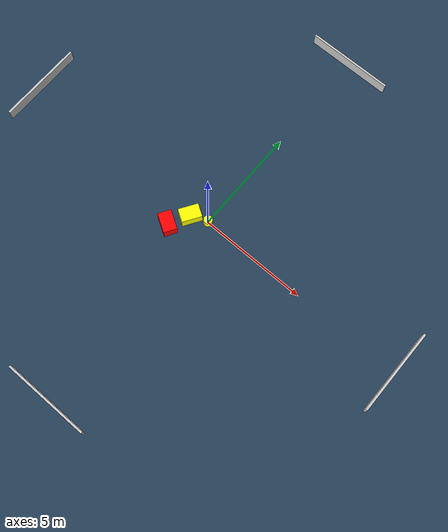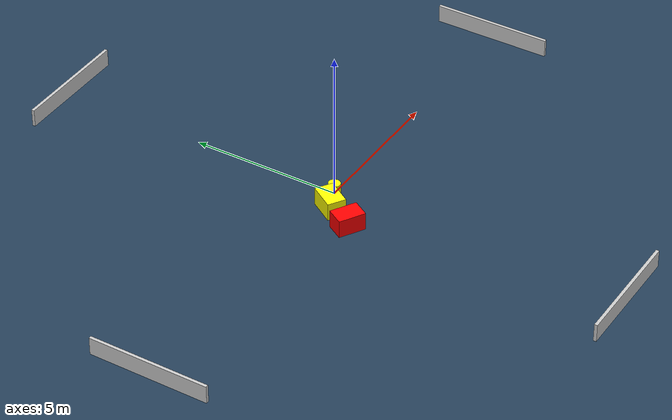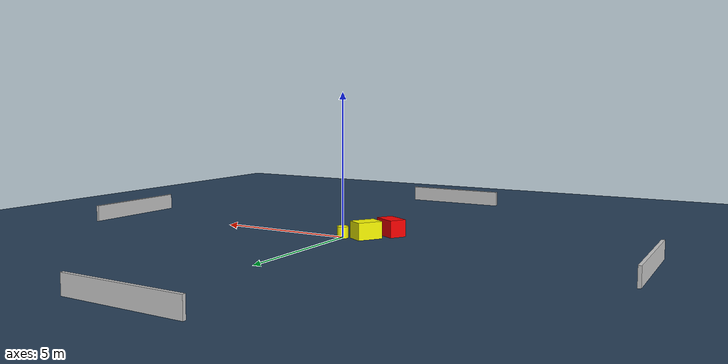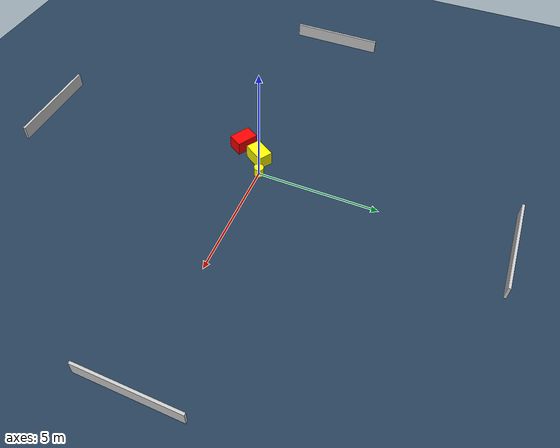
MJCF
<?xml version="1.0" ?>
<mujoco model="generated_environment">
  <option timestep="0.01" integrator="RK4" cone="elliptic"/>
  <default>
    <geom density="1"/>
  </default>
  <asset>
    <texture builtin="gradient" height="3072" name="skybox" rgb1="0.3 0.5 0.7" rgb2="0 0 0" type="skybox" width="512"/>
    <texture builtin="checker" height="300" name="groundplane" rgb1="0.2 0.3 0.4" rgb2="0.1 0.2 0.3" type="2d" width="300"/>
    <material name="groundplane" reflectance="0.2" texrepeat="5 5" texture="groundplane"/>
  </asset>
  <worldbody>
    <light dir="0 0 -1" directional="true" pos="0 0 1.5"/>
    <geom condim="3" friction="0.5 0.005 0.001" material="groundplane" name="floor" pos="0 0 0" size="0 0 0.05" type="plane"/>
    <body name="walls">
      <geom name="wall_1" condim="4" pos="-10.0 0.0 0.3" rgba="0.800000011920929 0.800000011920929 0.800000011920929 1.0" size="0.05 2.0 0.3" type="box"/>
      <geom name="wall_2" condim="4" pos="10.0 0.0 0.3" rgba="0.800000011920929 0.800000011920929 0.800000011920929 1.0" size="0.05 2.0 0.3" type="box"/>
      <geom name="wall_3" condim="4" pos="0.0 -10.0 0.3" rgba="0.800000011920929 0.800000011920929 0.800000011920929 1.0" size="2.0 0.05 0.3" type="box"/>
      <geom name="wall_4" condim="4" pos="0.0 10.0 0.3" rgba="0.800000011920929 0.800000011920929 0.800000011920929 1.0" size="2.0 0.05 0.3" type="box"/>
    </body>
    <body name="robot">
      <joint name="joint_x" type="slide" pos="0 0 0" axis="1 0 0"/>
      <joint name="joint_y" type="slide" pos="0 0 0" axis="0 1 0"/>
      <geom name="robot" type="cylinder" pos="0.0 0.0 0.2" size="0.2 0.2 0.0" mass="5.0" friction="1.0 0.005 0.0001" condim="4" rgba="1.0 1.0 0.0 1.0"/>
    </body>
    <body name="obstacle_1_movable">
      <geom name="obstacle_1_movable" condim="4" pos="-0.7491817585641208 -0.3126597820522223 0.3" euler="0 0 327.48509602153297" friction="0.0 0.005 0.001" rgba="1.0 1.0 0.0 1.0" size="0.30781264669131125 0.45846541445529687 0.3" type="box" mass="0.1"/>
      <joint type="free"/>
    </body>
    <body name="obstacle_2_static">
      <geom name="obstacle_2_static" condim="4" pos="-1.2420895468252589 -1.232807712583436 0.3" euler="0 0 149.28710318396924" friction="0.0 0.005 0.001" rgba="1.0 0.0 0.0 1.0" size="0.45389613504216386 0.3082053022153181 0.3" type="box"/>
    </body>
  </worldbody>
  <actuator>
    <motor name="actuator_x" joint="joint_x" gear="1" ctrlrange="-1 1"/>
    <motor name="actuator_y" joint="joint_y" gear="1" ctrlrange="-1 1"/>
  </actuator>
</mujoco>
